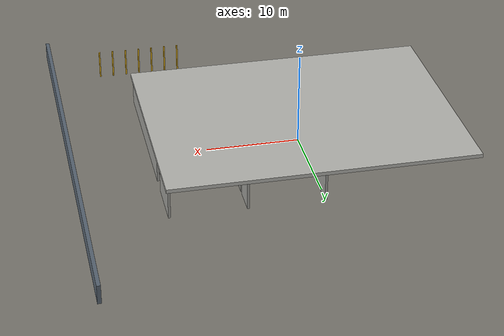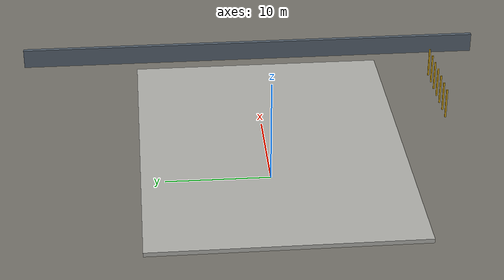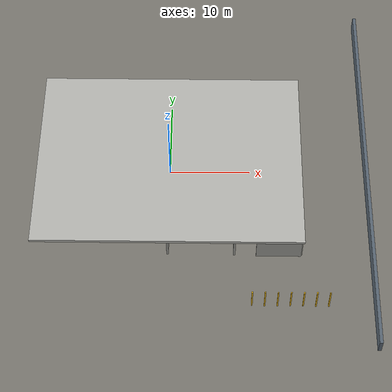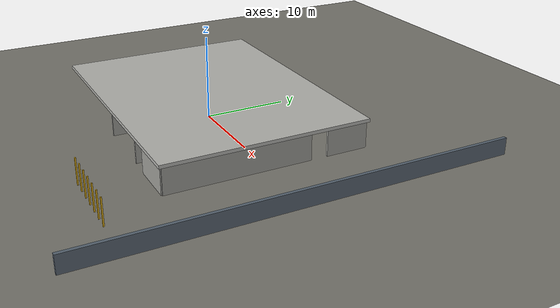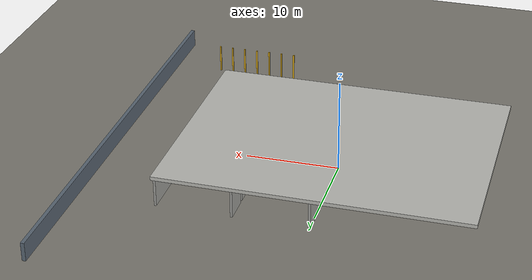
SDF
<sdf version="1.6">
 <world name="w4_structure_decks">
  <model name="ground_plane">
   <static>true</static>
   <link name="link">
    <collision name="collision">
     <geometry><plane><normal>0 0 1</normal><size>300.0 300.0</size></plane></geometry>
    </collision>
    <visual name="visual">
     <geometry><plane><normal>0 0 1</normal><size>300.0 300.0</size></plane></geometry>
     <material>
      <ambient>0.48 0.47 0.44 1</ambient>
      <diffuse>0.48 0.47 0.44 1</diffuse>
      <specular>0.05 0.05 0.05 1</specular>
     </material>
    </visual>
   </link>
  </model>
  <model name="fence_E0">
   <static>true</static>
   <pose>24.5000 0.0000 1.0000 0 0 1.57080</pose>
   <link name="link">
    <collision name="c"><geometry><box><size>49.0000 0.4000 2.0000</size></box></geometry></collision>
    <visual name="v">
     <geometry><box><size>49.0000 0.4000 2.0000</size></box></geometry>
     <material>
      <ambient>0.350 0.400 0.450 1</ambient>
      <diffuse>0.350 0.400 0.450 1</diffuse>
      <specular>0.1 0.1 0.1 1</specular>
     </material>
    </visual>
   </link>
  </model>
  <model name="ext_E_0">
   <static>true</static>
   <pose>16.0000 -3.5000 1.5500 0 0 1.57080</pose>
   <link name="link">
    <collision name="c"><geometry><box><size>17.0000 0.2500 3.1000</size></box></geometry></collision>
    <visual name="v">
     <geometry><box><size>17.0000 0.2500 3.1000</size></box></geometry>
     <material>
      <ambient>0.620 0.620 0.600 1</ambient>
      <diffuse>0.620 0.620 0.600 1</diffuse>
      <specular>0.1 0.1 0.1 1</specular>
     </material>
    </visual>
   </link>
  </model>
  <model name="ext_E_1">
   <static>true</static>
   <pose>16.0000 9.5000 1.5500 0 0 1.57080</pose>
   <link name="link">
    <collision name="c"><geometry><box><size>5.0000 0.2500 3.1000</size></box></geometry></collision>
    <visual name="v">
     <geometry><box><size>5.0000 0.2500 3.1000</size></box></geometry>
     <material>
      <ambient>0.620 0.620 0.600 1</ambient>
      <diffuse>0.620 0.620 0.600 1</diffuse>
      <specular>0.1 0.1 0.1 1</specular>
     </material>
    </visual>
   </link>
  </model>
  <model name="ext_S_1">
   <static>true</static>
   <pose>13.3000 -12.0000 1.5500 0 0 0.00000</pose>
   <link name="link">
    <collision name="c"><geometry><box><size>5.4000 0.2500 3.1000</size></box></geometry></collision>
    <visual name="v">
     <geometry><box><size>5.4000 0.2500 3.1000</size></box></geometry>
     <material>
      <ambient>0.620 0.620 0.600 1</ambient>
      <diffuse>0.620 0.620 0.600 1</diffuse>
      <specular>0.1 0.1 0.1 1</specular>
     </material>
    </visual>
   </link>
  </model>
  <model name="V2_0">
   <static>true</static>
   <pose>0.0000 -5.2500 1.5500 0 0 1.57080</pose>
   <link name="link">
    <collision name="c"><geometry><box><size>13.5000 0.2500 3.1000</size></box></geometry></collision>
    <visual name="v">
     <geometry><box><size>13.5000 0.2500 3.1000</size></box></geometry>
     <material>
      <ambient>0.620 0.620 0.600 1</ambient>
      <diffuse>0.620 0.620 0.600 1</diffuse>
      <specular>0.1 0.1 0.1 1</specular>
     </material>
    </visual>
   </link>
  </model>
  <model name="V2_1">
   <static>true</static>
   <pose>0.0000 7.2500 1.5500 0 0 1.57080</pose>
   <link name="link">
    <collision name="c"><geometry><box><size>9.5000 0.2500 3.1000</size></box></geometry></collision>
    <visual name="v">
     <geometry><box><size>9.5000 0.2500 3.1000</size></box></geometry>
     <material>
      <ambient>0.620 0.620 0.600 1</ambient>
      <diffuse>0.620 0.620 0.600 1</diffuse>
      <specular>0.1 0.1 0.1 1</specular>
     </material>
    </visual>
   </link>
  </model>
  <model name="V3_0">
   <static>true</static>
   <pose>8.0000 -7.3000 1.5500 0 0 1.57080</pose>
   <link name="link">
    <collision name="c"><geometry><box><size>9.4000 0.2500 3.1000</size></box></geometry></collision>
    <visual name="v">
     <geometry><box><size>9.4000 0.2500 3.1000</size></box></geometry>
     <material>
      <ambient>0.620 0.620 0.600 1</ambient>
      <diffuse>0.620 0.620 0.600 1</diffuse>
      <specular>0.1 0.1 0.1 1</specular>
     </material>
    </visual>
   </link>
  </model>
  <model name="V3_1">
   <static>true</static>
   <pose>8.0000 3.6750 1.5500 0 0 1.57080</pose>
   <link name="link">
    <collision name="c"><geometry><box><size>10.1500 0.2500 3.1000</size></box></geometry></collision>
    <visual name="v">
     <geometry><box><size>10.1500 0.2500 3.1000</size></box></geometry>
     <material>
      <ambient>0.620 0.620 0.600 1</ambient>
      <diffuse>0.620 0.620 0.600 1</diffuse>
      <specular>0.1 0.1 0.1 1</specular>
     </material>
    </visual>
   </link>
  </model>
  <model name="V3_2">
   <static>true</static>
   <pose>8.0000 10.6250 1.5500 0 0 1.57080</pose>
   <link name="link">
    <collision name="c"><geometry><box><size>2.7500 0.2500 3.1000</size></box></geometry></collision>
    <visual name="v">
     <geometry><box><size>2.7500 0.2500 3.1000</size></box></geometry>
     <material>
      <ambient>0.620 0.620 0.600 1</ambient>
      <diffuse>0.620 0.620 0.600 1</diffuse>
      <specular>0.1 0.1 0.1 1</specular>
     </material>
    </visual>
   </link>
  </model>
  <model name="H1_2">
   <static>true</static>
   <pose>8.0750 -4.0000 1.5500 0 0 0.00000</pose>
   <link name="link">
    <collision name="c"><geometry><box><size>7.1500 0.2500 3.1000</size></box></geometry></collision>
    <visual name="v">
     <geometry><box><size>7.1500 0.2500 3.1000</size></box></geometry>
     <material>
      <ambient>0.620 0.620 0.600 1</ambient>
      <diffuse>0.620 0.620 0.600 1</diffuse>
      <specular>0.1 0.1 0.1 1</specular>
     </material>
    </visual>
   </link>
  </model>
  <model name="H1_3">
   <static>true</static>
   <pose>14.1750 -4.0000 1.5500 0 0 0.00000</pose>
   <link name="link">
    <collision name="c"><geometry><box><size>3.6500 0.2500 3.1000</size></box></geometry></collision>
    <visual name="v">
     <geometry><box><size>3.6500 0.2500 3.1000</size></box></geometry>
     <material>
      <ambient>0.620 0.620 0.600 1</ambient>
      <diffuse>0.620 0.620 0.600 1</diffuse>
      <specular>0.1 0.1 0.1 1</specular>
     </material>
    </visual>
   </link>
  </model>
  <model name="H2_1">
   <static>true</static>
   <pose>4.0000 4.0000 1.5500 0 0 0.00000</pose>
   <link name="link">
    <collision name="c"><geometry><box><size>14.8000 0.2500 3.1000</size></box></geometry></collision>
    <visual name="v">
     <geometry><box><size>14.8000 0.2500 3.1000</size></box></geometry>
     <material>
      <ambient>0.620 0.620 0.600 1</ambient>
      <diffuse>0.620 0.620 0.600 1</diffuse>
      <specular>0.1 0.1 0.1 1</specular>
     </material>
    </visual>
   </link>
  </model>
  <model name="H2_2">
   <static>true</static>
   <pose>14.3000 4.0000 1.5500 0 0 0.00000</pose>
   <link name="link">
    <collision name="c"><geometry><box><size>3.4000 0.2500 3.1000</size></box></geometry></collision>
    <visual name="v">
     <geometry><box><size>3.4000 0.2500 3.1000</size></box></geometry>
     <material>
      <ambient>0.620 0.620 0.600 1</ambient>
      <diffuse>0.620 0.620 0.600 1</diffuse>
      <specular>0.1 0.1 0.1 1</specular>
     </material>
    </visual>
   </link>
  </model>
  <model name="deck">
   <static>true</static>
   <pose>0.0000 0.0000 3.3000 0 0 0.00000</pose>
   <link name="link">
    <collision name="c"><geometry><box><size>32.6000 24.6000 0.4000</size></box></geometry></collision>
    <visual name="v">
     <geometry><box><size>32.6000 24.6000 0.4000</size></box></geometry>
     <material>
      <ambient>0.720 0.720 0.700 1</ambient>
      <diffuse>0.720 0.720 0.700 1</diffuse>
      <specular>0.1 0.1 0.1 1</specular>
     </material>
    </visual>
   </link>
  </model>
  <model name="post_20_0">
   <static>true</static>
   <pose>10.0000 -18.8000 1.5500 0 0 0.00000</pose>
   <link name="link">
    <collision name="c"><geometry><box><size>0.1500 0.1500 3.1000</size></box></geometry></collision>
    <visual name="v">
     <geometry><box><size>0.1500 0.1500 3.1000</size></box></geometry>
     <material>
      <ambient>0.900 0.700 0.100 1</ambient>
      <diffuse>0.900 0.700 0.100 1</diffuse>
      <specular>0.1 0.1 0.1 1</specular>
     </material>
    </visual>
   </link>
  </model>
  <model name="post_21_0">
   <static>true</static>
   <pose>11.5000 -18.8000 1.5500 0 0 0.00000</pose>
   <link name="link">
    <collision name="c"><geometry><box><size>0.1500 0.1500 3.1000</size></box></geometry></collision>
    <visual name="v">
     <geometry><box><size>0.1500 0.1500 3.1000</size></box></geometry>
     <material>
      <ambient>0.900 0.700 0.100 1</ambient>
      <diffuse>0.900 0.700 0.100 1</diffuse>
      <specular>0.1 0.1 0.1 1</specular>
     </material>
    </visual>
   </link>
  </model>
  <model name="post_22_0">
   <static>true</static>
   <pose>13.0000 -18.8000 1.5500 0 0 0.00000</pose>
   <link name="link">
    <collision name="c"><geometry><box><size>0.1500 0.1500 3.1000</size></box></geometry></collision>
    <visual name="v">
     <geometry><box><size>0.1500 0.1500 3.1000</size></box></geometry>
     <material>
      <ambient>0.900 0.700 0.100 1</ambient>
      <diffuse>0.900 0.700 0.100 1</diffuse>
      <specular>0.1 0.1 0.1 1</specular>
     </material>
    </visual>
   </link>
  </model>
  <model name="post_23_0">
   <static>true</static>
   <pose>14.5000 -18.8000 1.5500 0 0 0.00000</pose>
   <link name="link">
    <collision name="c"><geometry><box><size>0.1500 0.1500 3.1000</size></box></geometry></collision>
    <visual name="v">
     <geometry><box><size>0.1500 0.1500 3.1000</size></box></geometry>
     <material>
      <ambient>0.900 0.700 0.100 1</ambient>
      <diffuse>0.900 0.700 0.100 1</diffuse>
      <specular>0.1 0.1 0.1 1</specular>
     </material>
    </visual>
   </link>
  </model>
  <model name="post_24_0">
   <static>true</static>
   <pose>16.0000 -18.8000 1.5500 0 0 0.00000</pose>
   <link name="link">
    <collision name="c"><geometry><box><size>0.1500 0.1500 3.1000</size></box></geometry></collision>
    <visual name="v">
     <geometry><box><size>0.1500 0.1500 3.1000</size></box></geometry>
     <material>
      <ambient>0.900 0.700 0.100 1</ambient>
      <diffuse>0.900 0.700 0.100 1</diffuse>
      <specular>0.1 0.1 0.1 1</specular>
     </material>
    </visual>
   </link>
  </model>
  <model name="post_25_0">
   <static>true</static>
   <pose>17.5000 -18.8000 1.5500 0 0 0.00000</pose>
   <link name="link">
    <collision name="c"><geometry><box><size>0.1500 0.1500 3.1000</size></box></geometry></collision>
    <visual name="v">
     <geometry><box><size>0.1500 0.1500 3.1000</size></box></geometry>
     <material>
      <ambient>0.900 0.700 0.100 1</ambient>
      <diffuse>0.900 0.700 0.100 1</diffuse>
      <specular>0.1 0.1 0.1 1</specular>
     </material>
    </visual>
   </link>
  </model>
  <model name="post_26_0">
   <static>true</static>
   <pose>19.0000 -18.8000 1.5500 0 0 0.00000</pose>
   <link name="link">
    <collision name="c"><geometry><box><size>0.1500 0.1500 3.1000</size></box></geometry></collision>
    <visual name="v">
     <geometry><box><size>0.1500 0.1500 3.1000</size></box></geometry>
     <material>
      <ambient>0.900 0.700 0.100 1</ambient>
      <diffuse>0.900 0.700 0.100 1</diffuse>
      <specular>0.1 0.1 0.1 1</specular>
     </material>
    </visual>
   </link>
  </model>
 </world>
</sdf>
